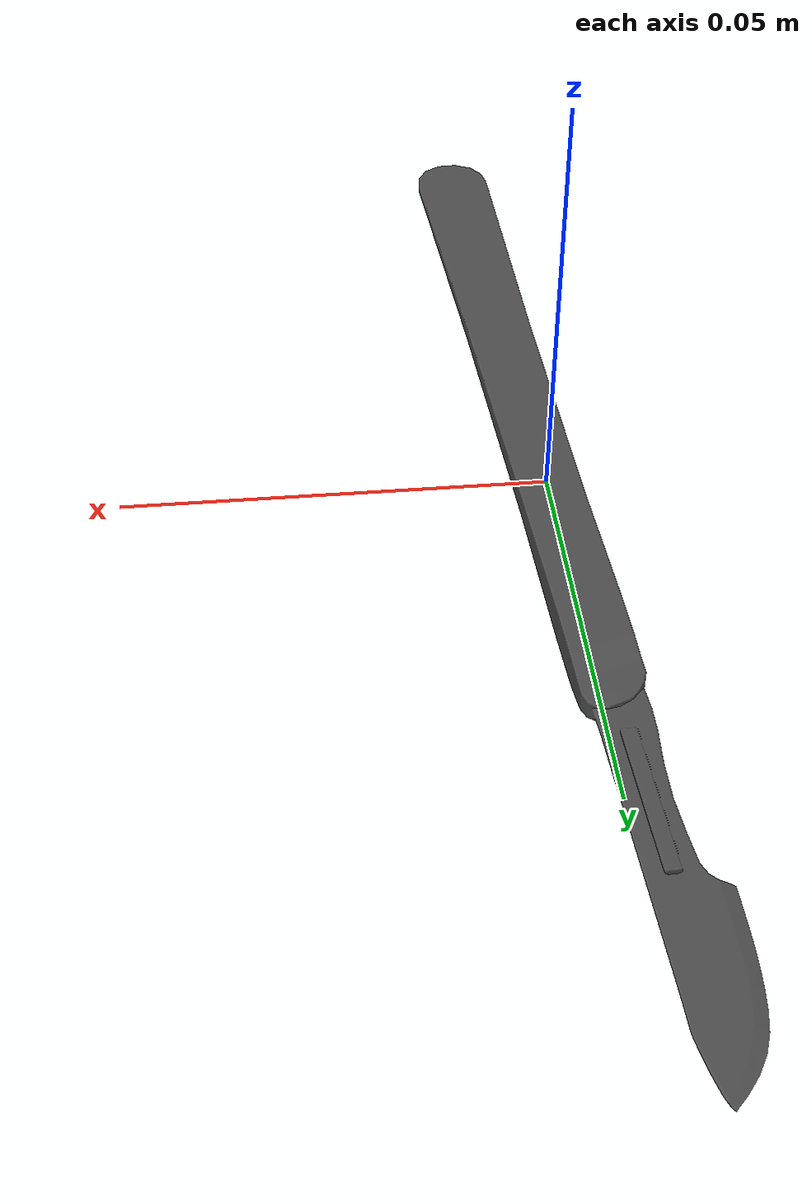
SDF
<?xml version="1.0"?>
<sdf version="1.9">
  <model name="scalpel">
    <static>false</static>
    <self_collide>false</self_collide>

    <link name="link">
      <inertial>
        <mass>0.02338</mass>
        <inertia>
          <ixx>0.0000526208</ixx>
          <ixy>0.0000000000</ixy>
          <ixz>0.0000000000</ixz>
          <iyy>0.0000016299</iyy>
          <iyz>0.0000000000</iyz>
          <izz>0.0000526920</izz>
        </inertia>
      </inertial>

      <collision name="collision">
        <geometry>
          <mesh>
            <uri>model://thesis/DAE/Scalpel/ScalpelCollision20.dae</uri>
            <scale>1 1 1</scale>
          </mesh>
        </geometry>
        <surface>
          <contact>
            <ode>
              <max_vel>0.01</max_vel>
            </ode>
          </contact>
        </surface>
      </collision>

      <visual name="visual">
        <geometry>
          <mesh>
            <uri>model://thesis/DAE/Scalpel/Scalpel.dae</uri>
          </mesh>
        </geometry>
      </visual>
    </link>
  </model>
</sdf>
